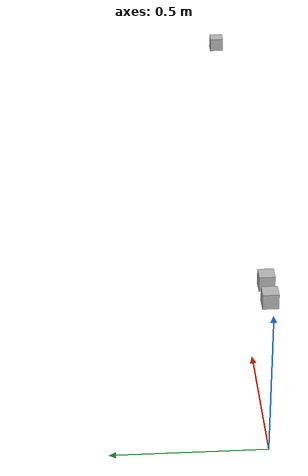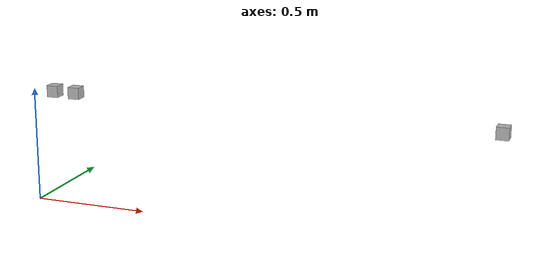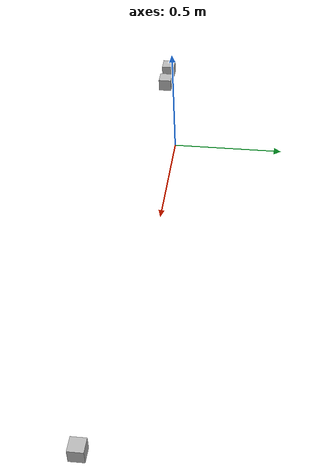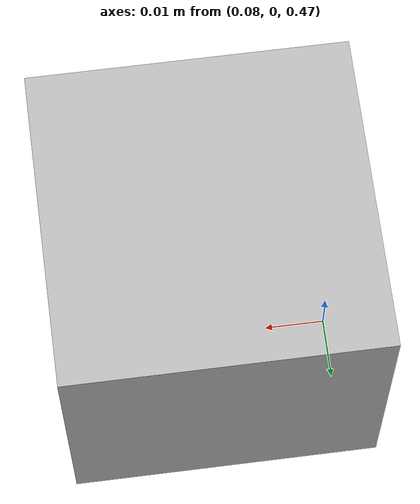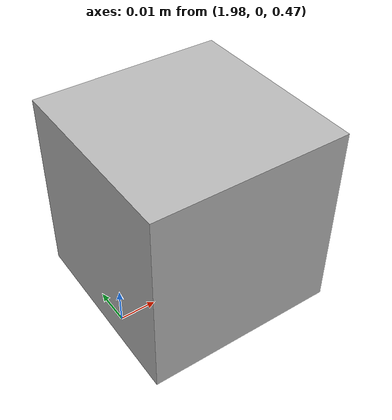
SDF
<?xml version="1.0"?>
<sdf version="1.9">
  <world name="hold">
    <gravity>0 0 0</gravity>
    <physics name="default" type="ignored">
      <!-- The same step the generated world uses. -->
      <max_step_size>0.001</max_step_size>
      <real_time_factor>0</real_time_factor>
    </physics>

    <plugin filename="gz-sim-physics-system" name="gz::sim::systems::Physics"/>

    <model name="rig">
      <pose>0 0 0.5 0 0 0</pose>
      <link name="wrist">
        <inertial>
          <mass>1.0</mass>
          <inertia>
            <ixx>0.01</ixx><ixy>0</ixy><ixz>0</ixz>
            <iyy>0.01</iyy><iyz>0</iyz>
            <izz>0.01</izz>
          </inertia>
        </inertial>
      </link>
      <link name="jaw">
        <inertial>
          <mass>0.05</mass>
          <inertia>
            <ixx>0.0001</ixx><ixy>0</ixy><ixz>0</ixz>
            <iyy>0.0001</iyy><iyz>0</iyz>
            <izz>0.0001</izz>
          </inertia>
        </inertial>
      </link>
      <joint name="world_anchor" type="fixed">
        <parent>world</parent>
        <child>wrist</child>
      </joint>
      <joint name="jaw_joint" type="revolute">
        <parent>wrist</parent>
        <child>jaw</child>
        <axis>
          <xyz>0 0 1</xyz>
          <limit><lower>-0.2</lower><upper>2.5</upper><effort>10</effort><velocity>10</velocity></limit>
        </axis>
      </joint>
    </model>

    <!-- 0.2 m from wrist — inside the 0.5 m attach_radius_m the plugin below
         declares. -->
    <model name="box">
      <pose>0.2 0 0.5 0 0 0</pose>
      <link name="link">
        <inertial>
          <mass>0.1</mass>
          <inertia>
            <ixx>0.00004</ixx><ixy>0</ixy><ixz>0</ixz>
            <iyy>0.00004</iyy><iyz>0</iyz>
            <izz>0.00004</izz>
          </inertia>
        </inertial>
        <collision name="collision">
          <geometry><box><size>0.05 0.05 0.05</size></box></geometry>
        </collision>
        <visual name="visual">
          <geometry><box><size>0.05 0.05 0.05</size></box></geometry>
        </visual>
      </link>
    </model>

    <model name="box_undeclared">
      <pose>0.1 0 0.5 0 0 0</pose>
      <link name="link">
        <inertial>
          <mass>0.1</mass>
          <inertia>
            <ixx>0.00004</ixx><ixy>0</ixy><ixz>0</ixz>
            <iyy>0.00004</iyy><iyz>0</iyz>
            <izz>0.00004</izz>
          </inertia>
        </inertial>
        <collision name="collision">
          <geometry><box><size>0.05 0.05 0.05</size></box></geometry>
        </collision>
        <visual name="visual">
          <geometry><box><size>0.05 0.05 0.05</size></box></geometry>
        </visual>
      </link>
    </model>

    <model name="box_far">
      <pose>2.0 0 0.5 0 0 0</pose>
      <link name="link">
        <inertial>
          <mass>0.1</mass>
          <inertia>
            <ixx>0.00004</ixx><ixy>0</ixy><ixz>0</ixz>
            <iyy>0.00004</iyy><iyz>0</iyz>
            <izz>0.00004</izz>
          </inertia>
        </inertial>
        <collision name="collision">
          <geometry><box><size>0.05 0.05 0.05</size></box></geometry>
        </collision>
        <visual name="visual">
          <geometry><box><size>0.05 0.05 0.05</size></box></geometry>
        </visual>
      </link>
    </model>

    <plugin filename="cite_grasp_hold" name="cite_simulation::GraspHold">
      <attach_link>wrist</attach_link>
      <attach_radius_m>0.5</attach_radius_m>
      <attach_topic>/test/hold/grasp/attach</attach_topic>
      <detach_topic>/test/hold/grasp/detach</detach_topic>
      <graspable>box</graspable>
      <graspable>box_far</graspable>
    </plugin>
  </world>
</sdf>
